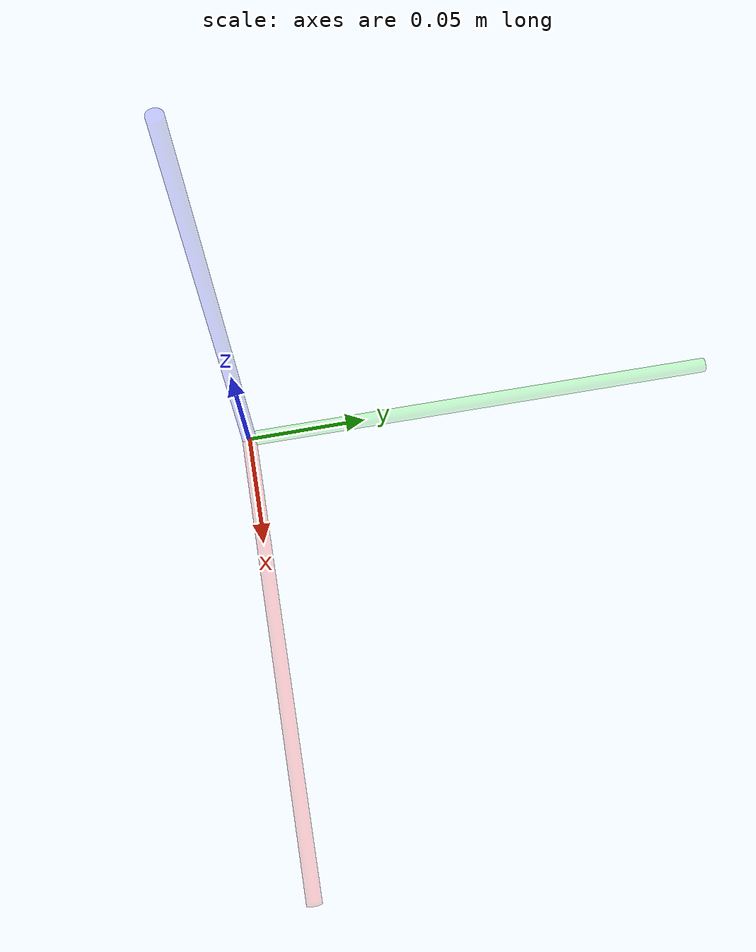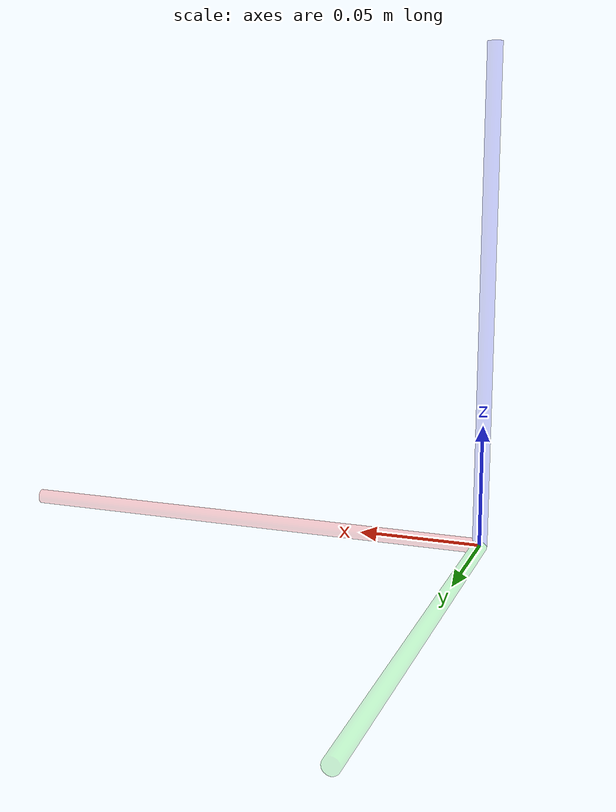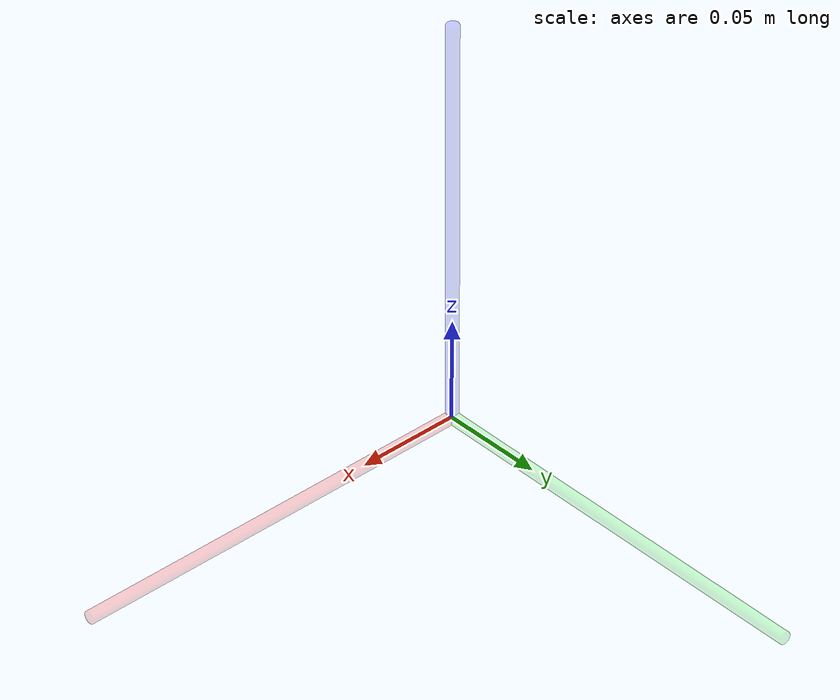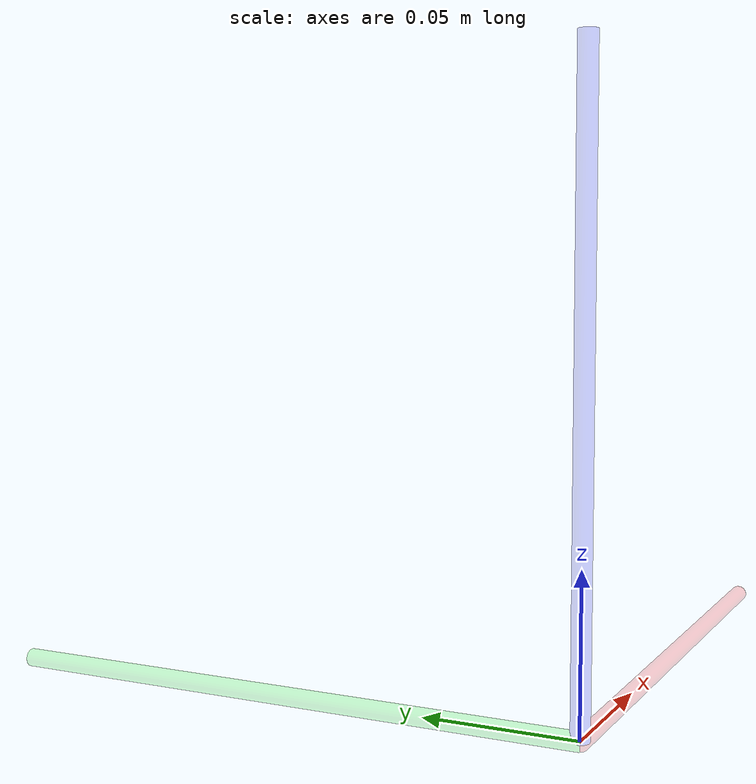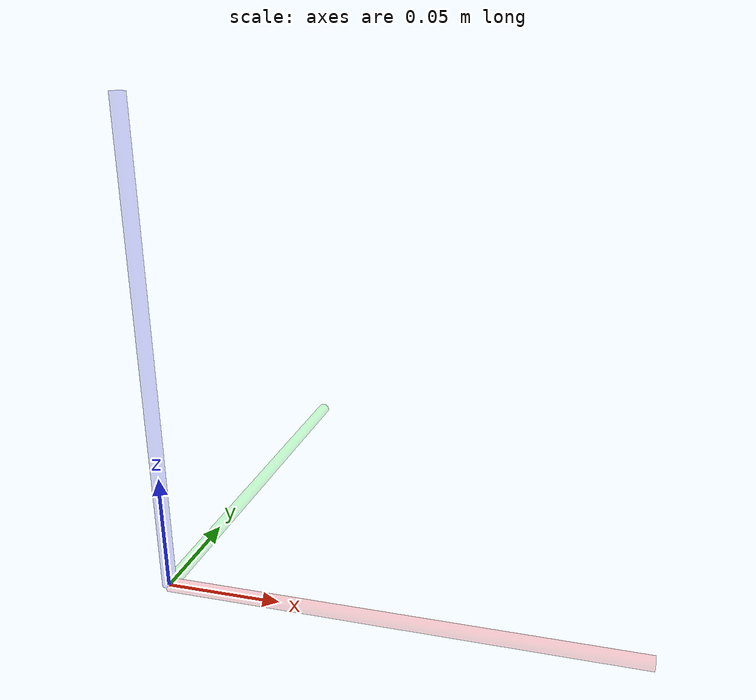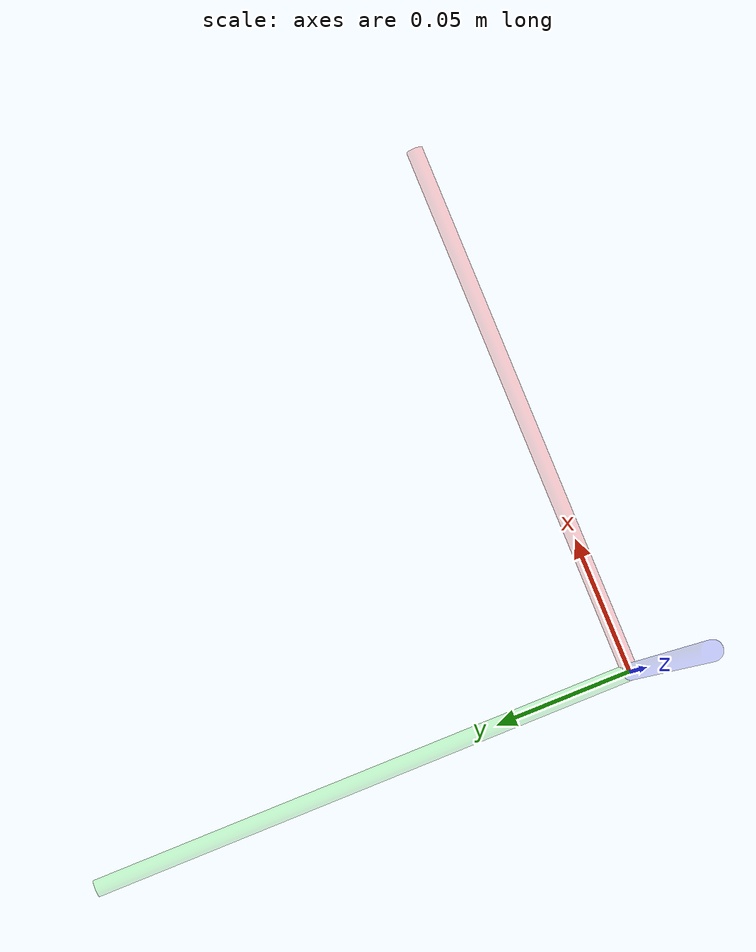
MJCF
<mujoco>

    <worldbody>
        <body name="world_axes" pos="0 0 0">
            <!-- x轴箭头（红） -->
                <geom type="cylinder" pos="0.1 0 0" euler="0 90 0" size="0.003 0.1" rgba="1 0 0 0.2" contype="0" conaffinity="0"/>

            <!-- y轴箭头（绿） -->
                <geom type="cylinder" pos="0 0.1 0" euler="90 0 0" size="0.003 0.1" rgba="0 1 0 0.2" contype="0" conaffinity="0"/>

            <!-- z轴箭头（蓝） -->
                <geom type="cylinder" pos="0 0 0.1" euler="0 0 0" size="0.003 0.1" rgba="0 0 1 0.2" contype="0" conaffinity="0"/>
            </body>

    </worldbody>

 </mujoco>
